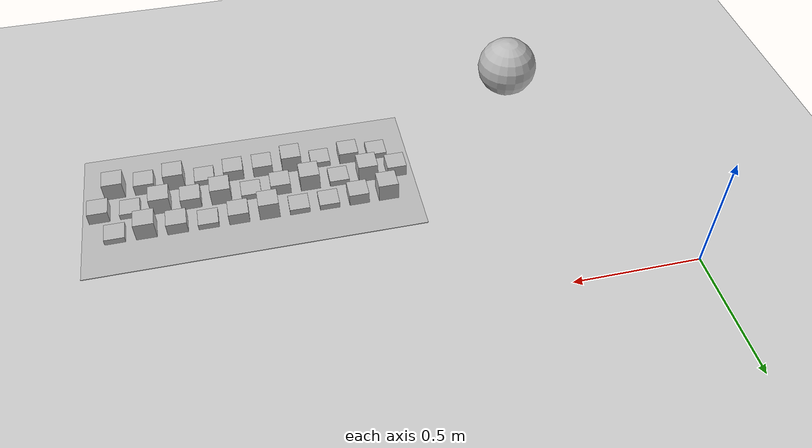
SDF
<sdf version="1.7">
 <world name="default">
  <light name="sun" type="directional">
   <pose>0 0 10 0 -0 0</pose>
   <diffuse>0.8 0.8 0.8 1</diffuse>
   <specular>0.2 0.2 0.2 1</specular>
   <attenuation>
    <range>1000</range>
    <constant>0.9</constant>
    <linear>0.01</linear>
    <quadratic>0.001</quadratic>
   </attenuation>
   <direction>-0.5 0.1 -0.9</direction>
   <spot><inner_angle>0</inner_angle><outer_angle>0</outer_angle><falloff>0</falloff></spot>
  </light>
  <model name="ground_plane">
   <static>1</static>
   <link name="link">
    <collision name="collision">
     <geometry><plane><normal>0 0 1</normal><size>100 100</size></plane></geometry>
     <surface>
      <contact><collide_bitmask>65535</collide_bitmask></contact>
      <friction><ode><mu>100</mu><mu2>50</mu2></ode></friction>
     </surface>
    </collision>
    <visual name="visual">
     <cast_shadows>0</cast_shadows>
     <geometry><plane><normal>0 0 1</normal><size>100 100</size></plane></geometry>
     <material>
      <script><uri>file://media/materials/scripts/gazebo.material</uri><name>Gazebo/Grey</name></script>
     </material>
    </visual>
   </link>
  </model>
  <gravity>0 0 -9.8</gravity>
  <magnetic_field>6e-06 2.3e-05 -4.2e-05</magnetic_field>
  <atmosphere type="adiabatic"/>
  <physics type="ode">
   <max_step_size>0.001</max_step_size>
   <real_time_factor>1</real_time_factor>
   <real_time_update_rate>1000</real_time_update_rate>
  </physics>
  <scene><ambient>0.4 0.4 0.4 1</ambient><background>0.7 0.7 0.7 1</background><shadows>1</shadows></scene>
  <audio><device>default</device></audio>
  <spherical_coordinates>
   <surface_model>EARTH_WGS84</surface_model>
   <latitude_deg>0</latitude_deg>
   <longitude_deg>0</longitude_deg>
   <elevation>0</elevation>
   <heading_deg>0</heading_deg>
  </spherical_coordinates>
  <model name="frc2016_ball">
   <pose>0.422989 -1.09908 0.127 0 -0 0</pose>
   <link name="link">
    <inertial>
     <mass>0.213</mass>
     <inertia>
      <ixx>0.00322667</ixx>
      <ixy>0</ixy>
      <ixz>0</ixz>
      <iyy>0.00322667</iyy>
      <iyz>0</iyz>
      <izz>0.00322667</izz>
     </inertia>
    </inertial>
    <visual name="visual"><geometry><sphere><radius>0.127</radius></sphere></geometry></visual>
    <collision name="collision">
     <geometry><sphere><radius>0.127</radius></sphere></geometry>
     <surface>
      <bounce><restitution_coefficient>0.15937</restitution_coefficient><threshold>0</threshold></bounce>
      <contact><ode><max_vel>100</max_vel><min_depth>0.001</min_depth></ode></contact>
     </surface>
    </collision>
   </link>
  </model>
  <model name="frc2016_roughterrain">
   <static>1</static>
   <link name="link">
    <visual name="platform">
     <pose>0 0 0.08269 0 -0 0</pose>
     <geometry><box><size>1.27 0.5969 0.003175</size></box></geometry>
    </visual>
    <collision name="platform">
     <pose>0 0 0.08269 0 -0 0</pose>
     <geometry><box><size>1.27 0.5969 0.003175</size></box></geometry>
    </collision>
    <visual name="row1_block1_sm">
     <pose>0.51435 0.1143 0.09698 0 -0 0</pose>
     <geometry><box><size>0.0762 0.0762 0.0254</size></box></geometry>
    </visual>
    <collision name="row1_block1_sm">
     <pose>0.51435 0.1143 0.09698 0 -0 0</pose>
     <geometry><box><size>0.0762 0.0762 0.0254</size></box></geometry>
    </collision>
    <visual name="row1_block2_lg">
     <pose>0.40005 0.1143 0.12238 0 -0 0</pose>
     <geometry><box><size>0.0762 0.0762 0.0762</size></box></geometry>
    </visual>
    <collision name="row1_block2_lg">
     <pose>0.40005 0.1143 0.12238 0 -0 0</pose>
     <geometry><box><size>0.0762 0.0762 0.0762</size></box></geometry>
    </collision>
    <visual name="row1_block3_md">
     <pose>0.28575 0.1143 0.10968 0 -0 0</pose>
     <geometry><box><size>0.0762 0.0762 0.0508</size></box></geometry>
    </visual>
    <collision name="row1_block3_md">
     <pose>0.28575 0.1143 0.10968 0 -0 0</pose>
     <geometry><box><size>0.0762 0.0762 0.0508</size></box></geometry>
    </collision>
    <visual name="row1_block4_sm">
     <pose>0.17145 0.1143 0.09698 0 -0 0</pose>
     <geometry><box><size>0.0762 0.0762 0.0254</size></box></geometry>
    </visual>
    <collision name="row1_block4_sm">
     <pose>0.17145 0.1143 0.09698 0 -0 0</pose>
     <geometry><box><size>0.0762 0.0762 0.0254</size></box></geometry>
    </collision>
    <visual name="row1_block5_md">
     <pose>0.05715 0.1143 0.10968 0 -0 0</pose>
     <geometry><box><size>0.0762 0.0762 0.0508</size></box></geometry>
    </visual>
    <collision name="row1_block5_md">
     <pose>0.05715 0.1143 0.10968 0 -0 0</pose>
     <geometry><box><size>0.0762 0.0762 0.0508</size></box></geometry>
    </collision>
    <visual name="row1_block6_lg">
     <pose>-0.05715 0.1143 0.12238 0 -0 0</pose>
     <geometry><box><size>0.0762 0.0762 0.0762</size></box></geometry>
    </visual>
    <collision name="row1_block6_lg">
     <pose>-0.05715 0.1143 0.12238 0 -0 0</pose>
     <geometry><box><size>0.0762 0.0762 0.0762</size></box></geometry>
    </collision>
    <visual name="row1_block7_sm">
     <pose>-0.17145 0.1143 0.09698 0 -0 0</pose>
     <geometry><box><size>0.0762 0.0762 0.0254</size></box></geometry>
    </visual>
    <collision name="row1_block7_sm">
     <pose>-0.17145 0.1143 0.09698 0 -0 0</pose>
     <geometry><box><size>0.0762 0.0762 0.0254</size></box></geometry>
    </collision>
    <visual name="row1_block8_sm">
     <pose>-0.28575 0.1143 0.09698 0 -0 0</pose>
     <geometry><box><size>0.0762 0.0762 0.0254</size></box></geometry>
    </visual>
    <collision name="row1_block8_sm">
     <pose>-0.28575 0.1143 0.09698 0 -0 0</pose>
     <geometry><box><size>0.0762 0.0762 0.0254</size></box></geometry>
    </collision>
    <visual name="row1_block9_md">
     <pose>-0.40005 0.1143 0.10968 0 -0 0</pose>
     <geometry><box><size>0.0762 0.0762 0.0508</size></box></geometry>
    </visual>
    <collision name="row1_block9_md">
     <pose>-0.40005 0.1143 0.10968 0 -0 0</pose>
     <geometry><box><size>0.0762 0.0762 0.0508</size></box></geometry>
    </collision>
    <visual name="row1_block10_lg">
     <pose>-0.51435 0.1143 0.12238 0 -0 0</pose>
     <geometry><box><size>0.0762 0.0762 0.0762</size></box></geometry>
    </visual>
    <collision name="row1_block10_lg">
     <pose>-0.51435 0.1143 0.12238 0 -0 0</pose>
     <geometry><box><size>0.0762 0.0762 0.0762</size></box></geometry>
    </collision>
    <visual name="row2_block1_md">
     <pose>0.5715 0 0.10968 0 -0 0</pose>
     <geometry><box><size>0.0762 0.0762 0.0508</size></box></geometry>
    </visual>
    <collision name="row2_block1_md">
     <pose>0.5715 0 0.10968 0 -0 0</pose>
     <geometry><box><size>0.0762 0.0762 0.0508</size></box></geometry>
    </collision>
    <visual name="row2_block2_sm">
     <pose>0.4572 0 0.09698 0 -0 0</pose>
     <geometry><box><size>0.0762 0.0762 0.0254</size></box></geometry>
    </visual>
    <collision name="row2_block2_sm">
     <pose>0.4572 0 0.09698 0 -0 0</pose>
     <geometry><box><size>0.0762 0.0762 0.0254</size></box></geometry>
    </collision>
    <visual name="row2_block3_lg">
     <pose>0.3429 0 0.12238 0 -0 0</pose>
     <geometry><box><size>0.0762 0.0762 0.0762</size></box></geometry>
    </visual>
    <collision name="row2_block3_lg">
     <pose>0.3429 0 0.12238 0 -0 0</pose>
     <geometry><box><size>0.0762 0.0762 0.0762</size></box></geometry>
    </collision>
    <visual name="row2_block4_md">
     <pose>0.2286 0 0.10968 0 -0 0</pose>
     <geometry><box><size>0.0762 0.0762 0.0508</size></box></geometry>
    </visual>
    <collision name="row2_block4_md">
     <pose>0.2286 0 0.10968 0 -0 0</pose>
     <geometry><box><size>0.0762 0.0762 0.0508</size></box></geometry>
    </collision>
    <visual name="row2_block5_lg">
     <pose>0.1143 0 0.12238 0 -0 0</pose>
     <geometry><box><size>0.0762 0.0762 0.0762</size></box></geometry>
    </visual>
    <collision name="row2_block5_lg">
     <pose>0.1143 0 0.12238 0 -0 0</pose>
     <geometry><box><size>0.0762 0.0762 0.0762</size></box></geometry>
    </collision>
    <visual name="row2_block6_sm">
     <pose>0 0 0.09698 0 -0 0</pose>
     <geometry><box><size>0.0762 0.0762 0.0254</size></box></geometry>
    </visual>
    <collision name="row2_block6_sm">
     <pose>0 0 0.09698 0 -0 0</pose>
     <geometry><box><size>0.0762 0.0762 0.0254</size></box></geometry>
    </collision>
    <visual name="row2_block7_md">
     <pose>-0.1143 0 0.10968 0 -0 0</pose>
     <geometry><box><size>0.0762 0.0762 0.0508</size></box></geometry>
    </visual>
    <collision name="row2_block7_md">
     <pose>-0.1143 0 0.10968 0 -0 0</pose>
     <geometry><box><size>0.0762 0.0762 0.0508</size></box></geometry>
    </collision>
    <visual name="row2_block8_lg">
     <pose>-0.2286 0 0.12238 0 -0 0</pose>
     <geometry><box><size>0.0762 0.0762 0.0762</size></box></geometry>
    </visual>
    <collision name="row2_block8_lg">
     <pose>-0.2286 0 0.12238 0 -0 0</pose>
     <geometry><box><size>0.0762 0.0762 0.0762</size></box></geometry>
    </collision>
    <visual name="row2_block9_sm">
     <pose>-0.3429 0 0.09698 0 -0 0</pose>
     <geometry><box><size>0.0762 0.0762 0.0254</size></box></geometry>
    </visual>
    <collision name="row2_block9_sm">
     <pose>-0.3429 0 0.09698 0 -0 0</pose>
     <geometry><box><size>0.0762 0.0762 0.0254</size></box></geometry>
    </collision>
    <visual name="row2_block10_lg">
     <pose>-0.4572 0 0.12238 0 -0 0</pose>
     <geometry><box><size>0.0762 0.0762 0.0762</size></box></geometry>
    </visual>
    <collision name="row2_block10_lg">
     <pose>-0.4572 0 0.12238 0 -0 0</pose>
     <geometry><box><size>0.0762 0.0762 0.0762</size></box></geometry>
    </collision>
    <visual name="row2_block11_md">
     <pose>-0.5715 0 0.10968 0 -0 0</pose>
     <geometry><box><size>0.0762 0.0762 0.0508</size></box></geometry>
    </visual>
    <collision name="row2_block11_md">
     <pose>-0.5715 0 0.10968 0 -0 0</pose>
     <geometry><box><size>0.0762 0.0762 0.0508</size></box></geometry>
    </collision>
    <visual name="row3_block1_lg">
     <pose>0.51435 -0.1143 0.12238 0 -0 0</pose>
     <geometry><box><size>0.0762 0.0762 0.0762</size></box></geometry>
    </visual>
    <collision name="row3_block1_lg">
     <pose>0.51435 -0.1143 0.12238 0 -0 0</pose>
     <geometry><box><size>0.0762 0.0762 0.0762</size></box></geometry>
    </collision>
    <visual name="row3_block2_md">
     <pose>0.40005 -0.1143 0.10968 0 -0 0</pose>
     <geometry><box><size>0.0762 0.0762 0.0508</size></box></geometry>
    </visual>
    <collision name="row3_block2_md">
     <pose>0.40005 -0.1143 0.10968 0 -0 0</pose>
     <geometry><box><size>0.0762 0.0762 0.0508</size></box></geometry>
    </collision>
    <visual name="row3_block3_lg">
     <pose>0.28575 -0.1143 0.12238 0 -0 0</pose>
     <geometry><box><size>0.0762 0.0762 0.0762</size></box></geometry>
    </visual>
    <collision name="row3_block3_lg">
     <pose>0.28575 -0.1143 0.12238 0 -0 0</pose>
     <geometry><box><size>0.0762 0.0762 0.0762</size></box></geometry>
    </collision>
    <visual name="row3_block4_sm">
     <pose>0.17145 -0.1143 0.09698 0 -0 0</pose>
     <geometry><box><size>0.0762 0.0762 0.0254</size></box></geometry>
    </visual>
    <collision name="row3_block4_sm">
     <pose>0.17145 -0.1143 0.09698 0 -0 0</pose>
     <geometry><box><size>0.0762 0.0762 0.0254</size></box></geometry>
    </collision>
    <visual name="row3_block5_md">
     <pose>0.05715 -0.1143 0.10968 0 -0 0</pose>
     <geometry><box><size>0.0762 0.0762 0.0508</size></box></geometry>
    </visual>
    <collision name="row3_block5_md">
     <pose>0.05715 -0.1143 0.10968 0 -0 0</pose>
     <geometry><box><size>0.0762 0.0762 0.0508</size></box></geometry>
    </collision>
    <visual name="row3_block6_md">
     <pose>-0.05715 -0.1143 0.10968 0 -0 0</pose>
     <geometry><box><size>0.0762 0.0762 0.0508</size></box></geometry>
    </visual>
    <collision name="row3_block6_md">
     <pose>-0.05715 -0.1143 0.10968 0 -0 0</pose>
     <geometry><box><size>0.0762 0.0762 0.0508</size></box></geometry>
    </collision>
    <visual name="row3_block7_lg">
     <pose>-0.17145 -0.1143 0.12238 0 -0 0</pose>
     <geometry><box><size>0.0762 0.0762 0.0762</size></box></geometry>
    </visual>
    <collision name="row3_block7_lg">
     <pose>-0.17145 -0.1143 0.12238 0 -0 0</pose>
     <geometry><box><size>0.0762 0.0762 0.0762</size></box></geometry>
    </collision>
    <visual name="row3_block8_sm">
     <pose>-0.28575 -0.1143 0.09698 0 -0 0</pose>
     <geometry><box><size>0.0762 0.0762 0.0254</size></box></geometry>
    </visual>
    <collision name="row3_block8_sm">
     <pose>-0.28575 -0.1143 0.09698 0 -0 0</pose>
     <geometry><box><size>0.0762 0.0762 0.0254</size></box></geometry>
    </collision>
    <visual name="row3_block9_md">
     <pose>-0.40005 -0.1143 0.10968 0 -0 0</pose>
     <geometry><box><size>0.0762 0.0762 0.0508</size></box></geometry>
    </visual>
    <collision name="row3_block9_md">
     <pose>-0.40005 -0.1143 0.10968 0 -0 0</pose>
     <geometry><box><size>0.0762 0.0762 0.0508</size></box></geometry>
    </collision>
    <visual name="row3_block10_sm">
     <pose>-0.51435 -0.1143 0.09698 0 -0 0</pose>
     <geometry><box><size>0.0762 0.0762 0.0254</size></box></geometry>
    </visual>
    <collision name="row3_block10_sm">
     <pose>-0.51435 -0.1143 0.09698 0 -0 0</pose>
     <geometry><box><size>0.0762 0.0762 0.0254</size></box></geometry>
    </collision>
   </link>
   <pose>1.60197 -0.625714 0 0 -0 0</pose>
  </model>
 </world>
</sdf>
